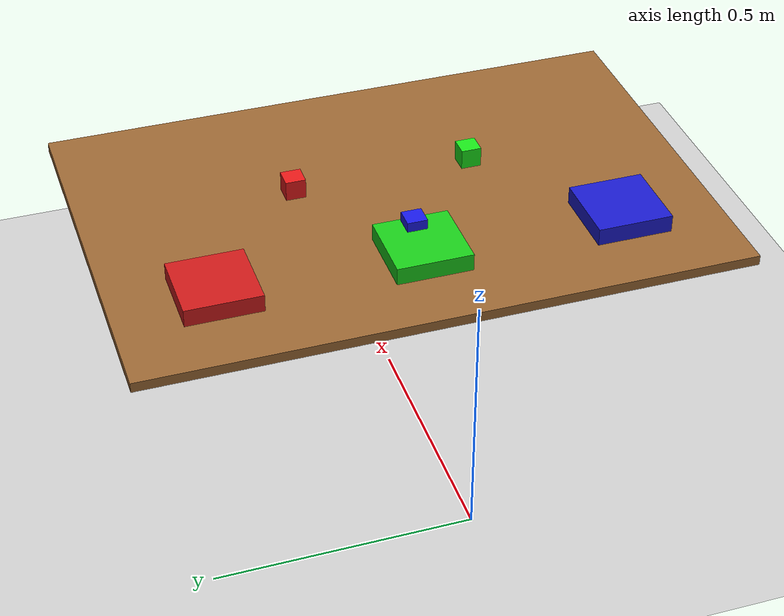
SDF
<?xml version="1.0" ?>
<sdf version="1.6">
  <world name="sorting_world">
  <plugin name="gazebo_ros_state" filename="libgazebo_ros_state.so">
    <ros>
      <namespace>/gazebo</namespace>
    </ros>
    <update_rate>10.0</update_rate>
  </plugin>

    <physics type="ode">
      <real_time_update_rate>1000.0</real_time_update_rate>
      <max_step_size>0.001</max_step_size>
      <real_time_factor>1</real_time_factor>
    </physics>

    <!-- Inline sun light — no model:// download needed -->
    <light name="sun" type="directional">
      <cast_shadows>true</cast_shadows>
      <pose>0 0 10 0 0 0</pose>
      <diffuse>1 1 1 1</diffuse>
      <specular>0.1 0.1 0.1 1</specular>
      <direction>-0.5 0.5 -1</direction>
    </light>

    <!-- Inline ground plane — no model:// download needed -->
    <model name="ground_plane">
      <link name="link">
        <collision name="collision">
          <geometry>
            <plane>
              <normal>0 0 1</normal>
              <size>100 100</size>
            </plane>
          </geometry>
          <surface>
            <friction><ode><mu>100</mu><mu2>50</mu2></ode></friction>
          </surface>
        </collision>
        <visual name="visual">
          <cast_shadows>false</cast_shadows>
          <geometry>
            <plane>
              <normal>0 0 1</normal>
              <size>100 100</size>
            </plane>
          </geometry>
          <material>
            <script>
              <uri>file://media/materials/scripts/gazebo.material</uri>
              <name>Gazebo/Grey</name>
            </script>
          </material>
        </visual>
      </link>
    </model>

    <!-- Work table -->
    <model name="work_table">
      <pose>0.5 0 0.4 0 0 0</pose>
      <link name="table_top">
        <collision name="collision">
          <geometry><box><size>0.8 1.2 0.02</size></box></geometry>
        </collision>
        <visual name="visual">
          <geometry><box><size>0.8 1.2 0.02</size></box></geometry>
          <material>
            <ambient>0.6 0.4 0.2 1</ambient>
            <diffuse>0.6 0.4 0.2 1</diffuse>
          </material>
        </visual>
      </link>
    </model>

    <!-- Sorting bin: RED -->
    <model name="bin_red">
      <pose>0.3 0.4 0.42 0 0 0</pose>
      <link name="bin_base">
        <collision name="collision">
          <geometry><box><size>0.15 0.15 0.05</size></box></geometry>
        </collision>
        <visual name="visual">
          <geometry><box><size>0.15 0.15 0.05</size></box></geometry>
          <material>
            <ambient>0.8 0.1 0.1 1</ambient>
            <diffuse>0.8 0.1 0.1 1</diffuse>
          </material>
        </visual>
      </link>
    </model>

    <!-- Sorting bin: GREEN -->
    <model name="bin_green">
      <pose>0.3 0.0 0.42 0 0 0</pose>
      <link name="bin_base">
        <collision name="collision">
          <geometry><box><size>0.15 0.15 0.05</size></box></geometry>
        </collision>
        <visual name="visual">
          <geometry><box><size>0.15 0.15 0.05</size></box></geometry>
          <material>
            <ambient>0.1 0.8 0.1 1</ambient>
            <diffuse>0.1 0.8 0.1 1</diffuse>
          </material>
        </visual>
      </link>
    </model>

    <!-- Sorting bin: BLUE -->
    <model name="bin_blue">
      <pose>0.3 -0.4 0.42 0 0 0</pose>
      <link name="bin_base">
        <collision name="collision">
          <geometry><box><size>0.15 0.15 0.05</size></box></geometry>
        </collision>
        <visual name="visual">
          <geometry><box><size>0.15 0.15 0.05</size></box></geometry>
          <material>
            <ambient>0.1 0.1 0.8 1</ambient>
            <diffuse>0.1 0.1 0.8 1</diffuse>
          </material>
        </visual>
      </link>
    </model>

    <!-- Test object: red cube on table surface -->
    <model name="red_cube_1">
      <pose>0.55 0.18 0.445 0 0 0</pose>
      <link name="cube_link">
        <inertial>
          <mass>0.1</mass>
          <inertia>
            <ixx>0.0001</ixx><iyy>0.0001</iyy><izz>0.0001</izz>
            <ixy>0</ixy><ixz>0</ixz><iyz>0</iyz>
          </inertia>
        </inertial>
        <collision name="collision">
          <geometry><box><size>0.04 0.04 0.04</size></box></geometry>
        </collision>
        <visual name="visual">
          <geometry><box><size>0.04 0.04 0.04</size></box></geometry>
          <material>
            <ambient>0.9 0.1 0.1 1</ambient>
            <diffuse>0.9 0.1 0.1 1</diffuse>
          </material>
        </visual>
      </link>
    </model>

    <!-- Green cube -->
    <model name="green_cube_1">
      <pose>0.55 -0.18 0.445 0 0 0</pose>
      <link name="cube_link">
        <inertial>
          <mass>0.1</mass>
          <inertia>
            <ixx>0.0001</ixx><iyy>0.0001</iyy><izz>0.0001</izz>
            <ixy>0</ixy><ixz>0</ixz><iyz>0</iyz>
          </inertia>
        </inertial>
        <collision name="collision">
          <geometry><box><size>0.04 0.04 0.04</size></box></geometry>
        </collision>
        <visual name="visual">
          <geometry><box><size>0.04 0.04 0.04</size></box></geometry>
          <material>
            <ambient>0.1 0.9 0.1 1</ambient>
            <diffuse>0.1 0.9 0.1 1</diffuse>
          </material>
        </visual>
      </link>
    </model>

    <!-- Blue cube -->
    <model name="blue_cube_1">
      <pose>0.35 0.0 0.445 0 0 0</pose>
      <link name="cube_link">
        <inertial>
          <mass>0.1</mass>
          <inertia>
            <ixx>0.0001</ixx><iyy>0.0001</iyy><izz>0.0001</izz>
            <ixy>0</ixy><ixz>0</ixz><iyz>0</iyz>
          </inertia>
        </inertial>
        <collision name="collision">
          <geometry><box><size>0.04 0.04 0.04</size></box></geometry>
        </collision>
        <visual name="visual">
          <geometry><box><size>0.04 0.04 0.04</size></box></geometry>
          <material>
            <ambient>0.1 0.1 0.9 1</ambient>
            <diffuse>0.1 0.1 0.9 1</diffuse>
          </material>
        </visual>
      </link>
    </model>

  </world>
</sdf>
